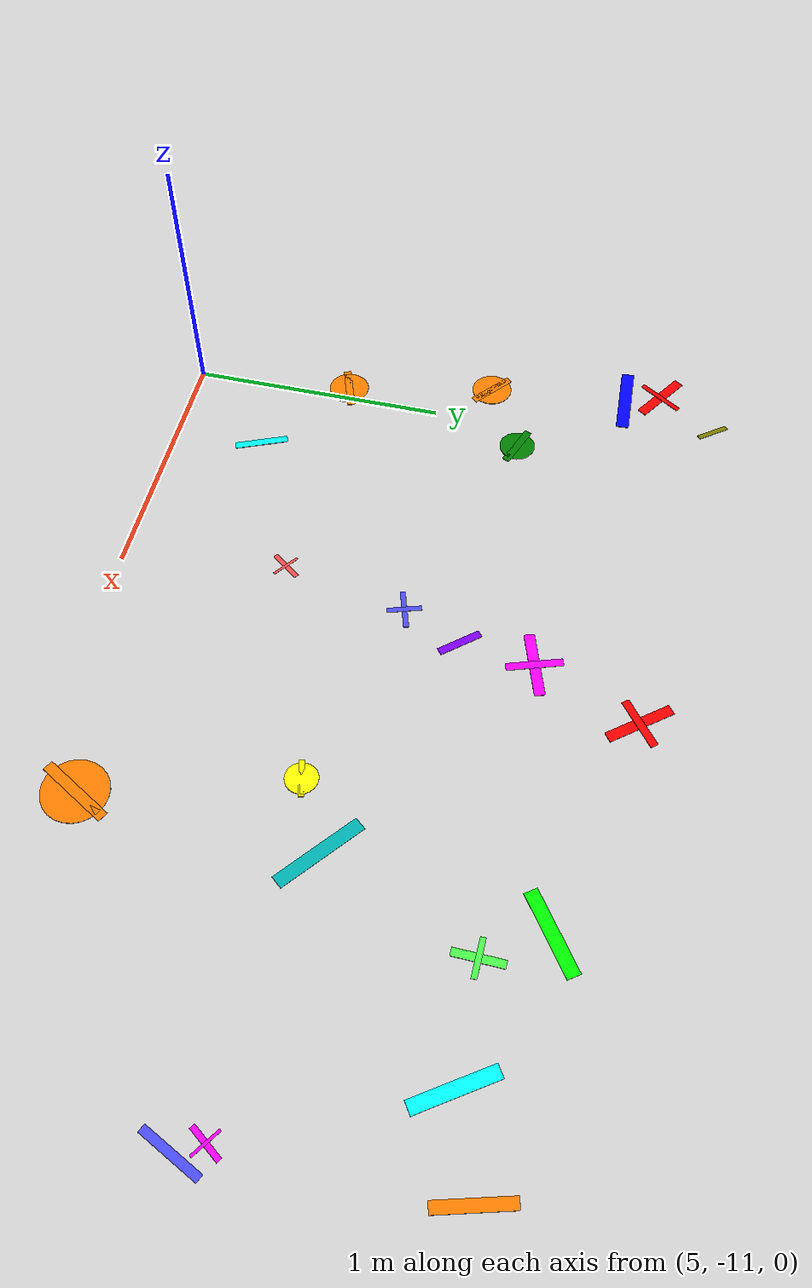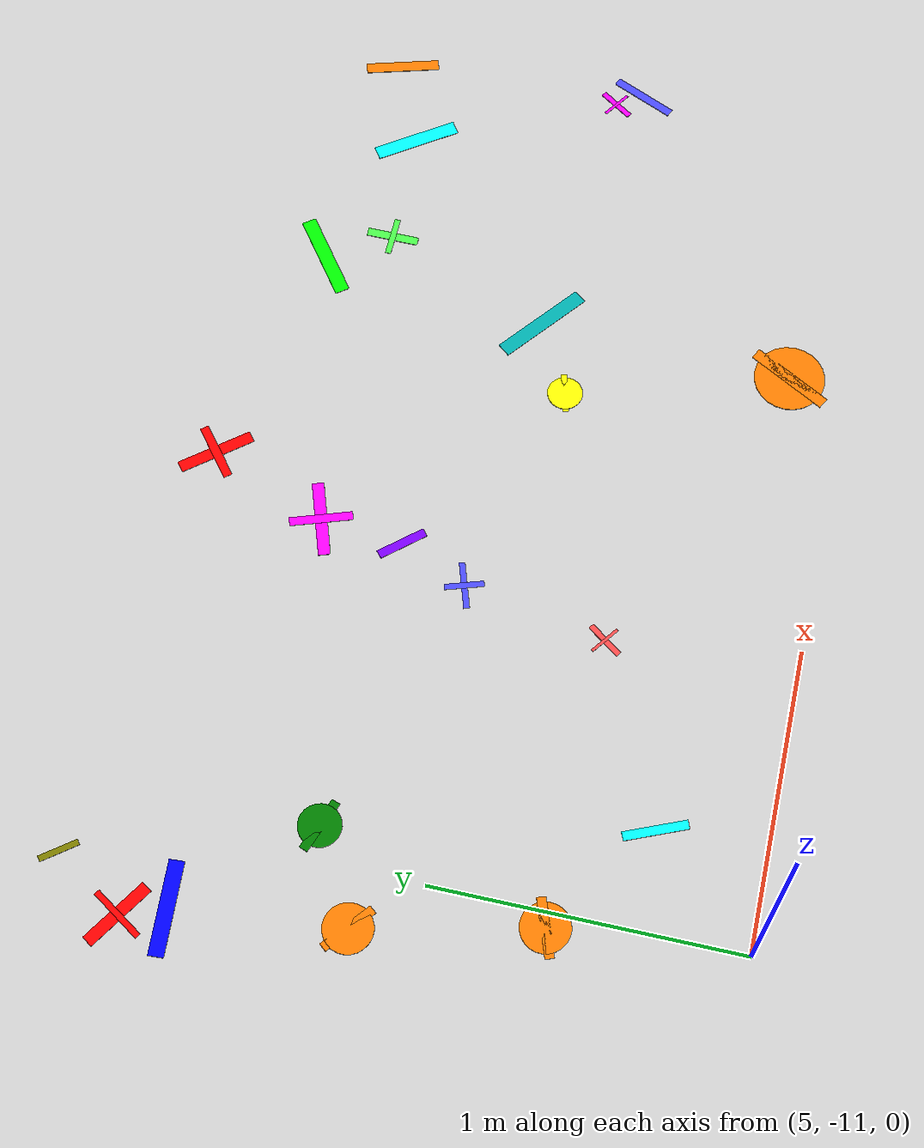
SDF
<sdf version="1.6">
 <world name="default">
  <model name="letter_V_1467">
   <static>true</static>
   <pose>5.32 -10.65 0.009 0 0 1.971</pose>
   <link name="link">
    <visual name="visual">
     <geometry><box><size>0.21 0.03 0.002</size></box></geometry>
     <material>
      <ambient>0.0 1.0 1.0 1</ambient>
      <diffuse>0.0 1.0 1.0 1</diffuse>
      <specular>0.1 0.1 0.1 1</specular>
     </material>
    </visual>
   </link>
  </model>
  <model name="letter_C_1469">
   <static>true</static>
   <pose>4.95 -10.38 0.011 0 0 0.336</pose>
   <link name="link">
    <visual name="visual">
     <geometry><box><size>0.19 0.03 0.002</size></box></geometry>
     <material>
      <ambient>1.0 0.5 0.0 1</ambient>
      <diffuse>1.0 0.5 0.0 1</diffuse>
      <specular>0.1 0.1 0.1 1</specular>
     </material>
    </visual>
    <visual name="visual2">
     <geometry><cylinder><radius>0.08</radius><length>0.002</length></cylinder></geometry>
     <material><ambient>1.0 0.5 0.0 1</ambient><diffuse>1.0 0.5 0.0 1</diffuse></material>
    </visual>
   </link>
  </model>
  <model name="letter_Q_1470">
   <static>true</static>
   <pose>4.82 -9.80 0.004 0 0 5.591</pose>
   <link name="link">
    <visual name="visual">
     <geometry><box><size>0.19 0.03 0.002</size></box></geometry>
     <material>
      <ambient>1.0 0.5 0.0 1</ambient>
      <diffuse>1.0 0.5 0.0 1</diffuse>
      <specular>0.1 0.1 0.1 1</specular>
     </material>
    </visual>
    <visual name="visual2">
     <geometry><cylinder><radius>0.08</radius><length>0.002</length></cylinder></geometry>
     <material><ambient>1.0 0.5 0.0 1</ambient><diffuse>1.0 0.5 0.0 1</diffuse></material>
    </visual>
   </link>
  </model>
  <model name="letter_C_1471">
   <static>true</static>
   <pose>5.11 -9.64 0.012 0 0 5.927</pose>
   <link name="link">
    <visual name="visual">
     <geometry><box><size>0.18 0.03 0.002</size></box></geometry>
     <material>
      <ambient>0.0 0.5 0.0 1</ambient>
      <diffuse>0.0 0.5 0.0 1</diffuse>
      <specular>0.1 0.1 0.1 1</specular>
     </material>
    </visual>
    <visual name="visual2">
     <geometry><cylinder><radius>0.07</radius><length>0.002</length></cylinder></geometry>
     <material><ambient>0.0 0.5 0.0 1</ambient><diffuse>0.0 0.5 0.0 1</diffuse></material>
    </visual>
   </link>
  </model>
  <model name="letter_K_1472">
   <static>true</static>
   <pose>4.76 -9.25 0.009 0 0 0.057</pose>
   <link name="link">
    <visual name="visual">
     <geometry><box><size>0.30 0.05 0.002</size></box></geometry>
     <material>
      <ambient>0.0 0.0 1.0 1</ambient>
      <diffuse>0.0 0.0 1.0 1</diffuse>
      <specular>0.1 0.1 0.1 1</specular>
     </material>
    </visual>
   </link>
  </model>
  <model name="letter_X_1473">
   <static>true</static>
   <pose>4.86 -8.88 0.012 0 0 2.216</pose>
   <link name="link">
    <visual name="visual">
     <geometry><box><size>0.13 0.02 0.002</size></box></geometry>
     <material>
      <ambient>0.5 0.5 0.0 1</ambient>
      <diffuse>0.5 0.5 0.0 1</diffuse>
      <specular>0.1 0.1 0.1 1</specular>
     </material>
    </visual>
   </link>
  </model>
  <model name="letter_F_1474">
   <static>true</static>
   <pose>4.71 -9.11 0.008 0 0 5.711</pose>
   <link name="link">
    <visual name="visual">
     <geometry><box><size>0.24 0.04 0.002</size></box></geometry>
     <material>
      <ambient>1.0 0.0 0.0 1</ambient>
      <diffuse>1.0 0.0 0.0 1</diffuse>
      <specular>0.1 0.1 0.1 1</specular>
     </material>
    </visual>
    <visual name="visual2">
     <pose>0 0 0.001 0 0 1.57</pose>
     <geometry><box><size>0.19 0.02 0.001</size></box></geometry>
     <material><ambient>1.0 0.0 0.0 1</ambient><diffuse>1.0 0.0 0.0 1</diffuse></material>
    </visual>
   </link>
  </model>
  <model name="letter_I_1546">
   <static>true</static>
   <pose>5.99 -9.90 0.007 0 0 3.452</pose>
   <link name="link">
    <visual name="visual">
     <geometry><box><size>0.16 0.02 0.002</size></box></geometry>
     <material>
      <ambient>0.3 0.3 1.0 1</ambient>
      <diffuse>0.3 0.3 1.0 1</diffuse>
      <specular>0.1 0.1 0.1 1</specular>
     </material>
    </visual>
    <visual name="visual2">
     <pose>0 0 0.001 0 0 1.57</pose>
     <geometry><box><size>0.13 0.02 0.001</size></box></geometry>
     <material><ambient>0.3 0.3 1.0 1</ambient><diffuse>0.3 0.3 1.0 1</diffuse></material>
    </visual>
   </link>
  </model>
  <model name="letter_A_1547">
   <static>true</static>
   <pose>5.90 -10.38 0.012 0 0 0.935</pose>
   <link name="link">
    <visual name="visual">
     <geometry><box><size>0.13 0.02 0.002</size></box></geometry>
     <material>
      <ambient>1.0 0.3 0.3 1</ambient>
      <diffuse>1.0 0.3 0.3 1</diffuse>
      <specular>0.1 0.1 0.1 1</specular>
     </material>
    </visual>
    <visual name="visual2">
     <pose>0 0 0.001 0 0 1.57</pose>
     <geometry><box><size>0.11 0.01 0.001</size></box></geometry>
     <material><ambient>1.0 0.3 0.3 1</ambient><diffuse>1.0 0.3 0.3 1</diffuse></material>
    </visual>
   </link>
  </model>
  <model name="letter_X_1548">
   <static>true</static>
   <pose>6.09 -9.67 0.009 0 0 2.278</pose>
   <link name="link">
    <visual name="visual">
     <geometry><box><size>0.17 0.03 0.002</size></box></geometry>
     <material>
      <ambient>0.5 0.0 1.0 1</ambient>
      <diffuse>0.5 0.0 1.0 1</diffuse>
      <specular>0.1 0.1 0.1 1</specular>
     </material>
    </visual>
   </link>
  </model>
  <model name="letter_H_1549">
   <static>true</static>
   <pose>6.28 -8.99 0.011 0 0 5.385</pose>
   <link name="link">
    <visual name="visual">
     <geometry><box><size>0.26 0.04 0.002</size></box></geometry>
     <material>
      <ambient>1.0 0.0 0.0 1</ambient>
      <diffuse>1.0 0.0 0.0 1</diffuse>
      <specular>0.1 0.1 0.1 1</specular>
     </material>
    </visual>
    <visual name="visual2">
     <pose>0 0 0.001 0 0 1.57</pose>
     <geometry><box><size>0.20 0.03 0.001</size></box></geometry>
     <material><ambient>1.0 0.0 0.0 1</ambient><diffuse>1.0 0.0 0.0 1</diffuse></material>
    </visual>
   </link>
  </model>
  <model name="letter_T_1550">
   <static>true</static>
   <pose>6.12 -9.39 0.006 0 0 0.326</pose>
   <link name="link">
    <visual name="visual">
     <geometry><box><size>0.26 0.04 0.002</size></box></geometry>
     <material>
      <ambient>1.0 0.0 1.0 1</ambient>
      <diffuse>1.0 0.0 1.0 1</diffuse>
      <specular>0.1 0.1 0.1 1</specular>
     </material>
    </visual>
    <visual name="visual2">
     <pose>0 0 0.001 0 0 1.57</pose>
     <geometry><box><size>0.21 0.03 0.001</size></box></geometry>
     <material><ambient>1.0 0.0 1.0 1</ambient><diffuse>1.0 0.0 1.0 1</diffuse></material>
    </visual>
   </link>
  </model>
  <model name="letter_O_1622">
   <static>true</static>
   <pose>6.97 -10.81 0.011 0 0 1.061</pose>
   <link name="link">
    <visual name="visual">
     <geometry><box><size>0.29 0.04 0.002</size></box></geometry>
     <material>
      <ambient>1.0 0.5 0.0 1</ambient>
      <diffuse>1.0 0.5 0.0 1</diffuse>
      <specular>0.1 0.1 0.1 1</specular>
     </material>
    </visual>
    <visual name="visual2">
     <geometry><cylinder><radius>0.12</radius><length>0.002</length></cylinder></geometry>
     <material><ambient>1.0 0.5 0.0 1</ambient><diffuse>1.0 0.5 0.0 1</diffuse></material>
    </visual>
   </link>
  </model>
  <model name="letter_Q_1624">
   <static>true</static>
   <pose>6.75 -10.08 0.009 0 0 0.246</pose>
   <link name="link">
    <visual name="visual">
     <geometry><box><size>0.14 0.02 0.002</size></box></geometry>
     <material>
      <ambient>1.0 1.0 0.0 1</ambient>
      <diffuse>1.0 1.0 0.0 1</diffuse>
      <specular>0.1 0.1 0.1 1</specular>
     </material>
    </visual>
    <visual name="visual2">
     <geometry><cylinder><radius>0.06</radius><length>0.002</length></cylinder></geometry>
     <material><ambient>1.0 1.0 0.0 1</ambient><diffuse>1.0 1.0 0.0 1</diffuse></material>
    </visual>
   </link>
  </model>
  <model name="letter_Y_1625">
   <static>true</static>
   <pose>7.00 -9.95 0.008 0 0 2.462</pose>
   <link name="link">
    <visual name="visual">
     <geometry><box><size>0.34 0.05 0.002</size></box></geometry>
     <material>
      <ambient>0.0 0.7 0.7 1</ambient>
      <diffuse>0.0 0.7 0.7 1</diffuse>
      <specular>0.1 0.1 0.1 1</specular>
     </material>
    </visual>
   </link>
  </model>
  <model name="letter_U_1626">
   <static>true</static>
   <pose>7.10 -9.16 0.009 0 0 3.773</pose>
   <link name="link">
    <visual name="visual">
     <geometry><box><size>0.31 0.05 0.002</size></box></geometry>
     <material>
      <ambient>0.0 1.0 0.0 1</ambient>
      <diffuse>0.0 1.0 0.0 1</diffuse>
      <specular>0.1 0.1 0.1 1</specular>
     </material>
    </visual>
   </link>
  </model>
  <model name="letter_F_1627">
   <static>true</static>
   <pose>7.23 -9.37 0.005 0 0 1.553</pose>
   <link name="link">
    <visual name="visual">
     <geometry><box><size>0.18 0.03 0.002</size></box></geometry>
     <material>
      <ambient>0.3 1.0 0.3 1</ambient>
      <diffuse>0.3 1.0 0.3 1</diffuse>
      <specular>0.1 0.1 0.1 1</specular>
     </material>
    </visual>
    <visual name="visual2">
     <pose>0 0 0.001 0 0 1.57</pose>
     <geometry><box><size>0.14 0.02 0.001</size></box></geometry>
     <material><ambient>0.3 1.0 0.3 1</ambient><diffuse>0.3 1.0 0.3 1</diffuse></material>
    </visual>
   </link>
  </model>
  <model name="letter_A_1703">
   <static>true</static>
   <pose>7.95 -10.03 0.004 0 0 4.106</pose>
   <link name="link">
    <visual name="visual">
     <geometry><box><size>0.13 0.02 0.002</size></box></geometry>
     <material>
      <ambient>1.0 0.0 1.0 1</ambient>
      <diffuse>1.0 0.0 1.0 1</diffuse>
      <specular>0.1 0.1 0.1 1</specular>
     </material>
    </visual>
    <visual name="visual2">
     <pose>0 0 0.001 0 0 1.57</pose>
     <geometry><box><size>0.11 0.01 0.001</size></box></geometry>
     <material><ambient>1.0 0.0 1.0 1</ambient><diffuse>1.0 0.0 1.0 1</diffuse></material>
    </visual>
   </link>
  </model>
  <model name="letter_P_1704">
   <static>true</static>
   <pose>8.00 -10.12 0.009 0 0 1.143</pose>
   <link name="link">
    <visual name="visual">
     <geometry><box><size>0.23 0.03 0.002</size></box></geometry>
     <material>
      <ambient>0.3 0.3 1.0 1</ambient>
      <diffuse>0.3 0.3 1.0 1</diffuse>
      <specular>0.1 0.1 0.1 1</specular>
     </material>
    </visual>
   </link>
  </model>
  <model name="letter_J_1705">
   <static>true</static>
   <pose>7.94 -9.24 0.012 0 0 4.988</pose>
   <link name="link">
    <visual name="visual">
     <geometry><box><size>0.26 0.04 0.002</size></box></geometry>
     <material>
      <ambient>1.0 0.5 0.0 1</ambient>
      <diffuse>1.0 0.5 0.0 1</diffuse>
      <specular>0.1 0.1 0.1 1</specular>
     </material>
    </visual>
   </link>
  </model>
  <model name="letter_R_1706">
   <static>true</static>
   <pose>7.64 -9.36 0.008 0 0 2.167</pose>
   <link name="link">
    <visual name="visual">
     <geometry><box><size>0.30 0.05 0.002</size></box></geometry>
     <material>
      <ambient>0.0 1.0 1.0 1</ambient>
      <diffuse>0.0 1.0 1.0 1</diffuse>
      <specular>0.1 0.1 0.1 1</specular>
     </material>
    </visual>
   </link>
  </model>
 </world>
</sdf>
